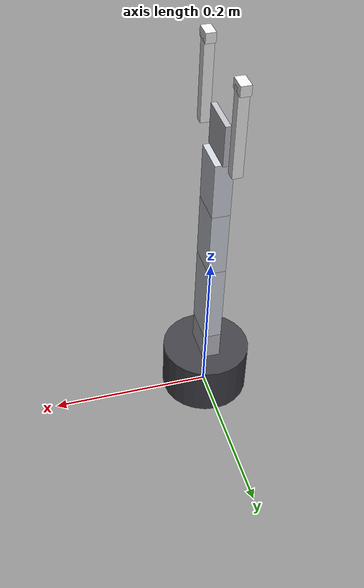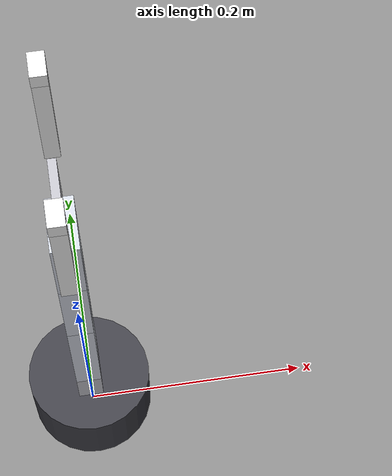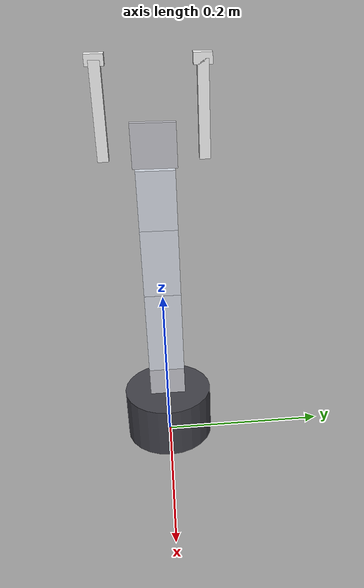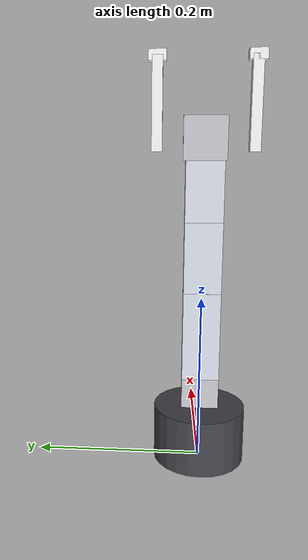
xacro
<?xml version="1.0"?>
<robot xmlns:xacro="http://www.ros.org/wiki/xacro" name="six_servo_arm">
    <xacro:arg name="initial_positions_file" default="initial_positions.yaml" />

    <!-- Import six_servo_arm urdf file -->
    <xacro:include filename="$(find six_servo_arm_description)/urdf/six_servo_arm_template.urdf" />

    <!-- Import control_xacro -->
    <xacro:include filename="six_servo_arm.ros2_control.xacro" />

    <xacro:six_servo_arm_ros2_control name="FakeSystem" initial_positions_file="$(arg initial_positions_file)"/>

</robot>

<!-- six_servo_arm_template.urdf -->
<robot name="six_servo_arm">

  <material name="dark_gray">
    <color rgba="0.25 0.25 0.28 1.0"/>
  </material>
  <material name="light_gray">
    <color rgba="0.75 0.75 0.78 1.0"/>
  </material>
  <material name="white">
    <color rgba="0.95 0.95 0.95 1.0"/>
  </material>
  <material name="silver">
    <color rgba="0.82 0.84 0.88 1.0"/>
  </material>

  <link name="base_link">
    <!--
      base_link = the fixed base of the whole robot.
      Think of it as the root body mounted on the table or chassis.
    -->
    <visual>
      <!-- visual only affects how it looks in RViz/Gazebo -->
      <!-- base_link frame is kept at the cylinder bottom center so the base sits on the ground plane -->
      <origin xyz="0 0 0.033" rpy="0 0 0"/>
      <geometry>
        <!-- diameter 11 cm, height 6.6 cm -->
        <cylinder radius="0.055" length="0.066"/>
      </geometry>
      <material name="dark_gray"/>
    </visual>
    <collision>
      <!-- collision affects collision checking; keep it simple -->
      <origin xyz="0 0 0.033" rpy="0 0 0"/>
      <geometry>
        <cylinder radius="0.055" length="0.066"/>
      </geometry>
    </collision>
    <inertial>
      <!-- inertial is used by physics simulators; rough placeholder values are fine at first -->
      <origin xyz="0 0 0.033" rpy="0 0 0"/>
      <mass value="1.0"/>
      <inertia ixx="0.002" ixy="0.0" ixz="0.0" iyy="0.002" iyz="0.0" izz="0.002"/>
    </inertial>
  </link>

  <link name="link_1">
    <!--
      link_1 = the rigid structure carried by servo 0 and ending at servo 1.
      In your arm, this is the first body after the rotating base.
    -->
    <visual>
      <!-- link1 is modeled as a rectangular block: length 4.4 cm, width 2.2 cm, height 3.6 cm -->
      <!-- its frame is placed at the bottom center, so the box center is half the height above the joint -->
      <origin xyz="0 0 0.018" rpy="0 0 0"/>
      <geometry>
        <box size="0.022 0.044 0.036"/>
      </geometry>
      <material name="light_gray"/>
    </visual>
    <collision>
      <origin xyz="0 0 0.018" rpy="0 0 0"/>
      <geometry>
        <box size="0.022 0.044 0.036"/>
      </geometry>
    </collision>
    <inertial>
      <origin xyz="0 0 0.018" rpy="0 0 0"/>
      <mass value="0.6"/>
      <inertia ixx="0.001" ixy="0.0" ixz="0.0" iyy="0.001" iyz="0.0" izz="0.001"/>
    </inertial>
  </link>

  <joint name="joint_0_base_yaw" type="revolute">
    <parent link="base_link"/>
    <child link="link_1"/>
    <!-- the top center of the 6.6 cm base cylinder coincides with the servo-0 axis -->
    <origin xyz="0 0 0.066" rpy="0 0 0"/>
    <axis xyz="0 0 1"/>
    <!-- angles are in radians; +/-2.35619 is about +/-135 degrees -->
    <limit lower="-2.35619" upper="2.35619" effort="5" velocity="2"/>
  </joint>

  <link name="link_2">
    <!--
      link_2 = the rigid section between servo 1 and servo 2.
      This is one of the "arm segments" you see in the middle.
    -->
    <visual>
      <origin xyz="0 0 0.053" rpy="0 0 0"/>
      <geometry>
        <box size="0.022 0.044 0.106"/>
      </geometry>
      <material name="silver"/>
    </visual>
    <collision>
      <origin xyz="0 0 0.062" rpy="0 0 0"/>
      <geometry>
        <box size="0.022 0.044 0.03"/>
      </geometry>
    </collision>
    <inertial>
      <origin xyz="0 0 0.053" rpy="0 0 0"/>
      <mass value="0.5"/>
      <inertia ixx="0.001" ixy="0.0" ixz="0.0" iyy="0.001" iyz="0.0" izz="0.001"/>
    </inertial>
  </link>

  <joint name="joint_1_shoulder_pitch" type="revolute">
    <parent link="link_1"/>
    <child link="link_2"/>
    <origin xyz="0 0 0.036" rpy="0 0 0"/>
    <axis xyz="0 -1 0"/>
    <limit lower="-2.35619" upper="2.35619" effort="5" velocity="2"/>
  </joint>

  <link name="link_3">
    <!-- link_3 = the rigid section between servo 2 and servo 3 -->
    <visual>
      <origin xyz="0 0 0.0417" rpy="0 0 0"/>
      <geometry>
        <box size="0.022 0.044 0.0833"/>
      </geometry>
      <material name="silver"/>
    </visual>
    <collision>
      <origin xyz="0 0 0.0417" rpy="0 0 0"/>
      <geometry>
        <box size="0.022 0.044 0.0833"/>
      </geometry>
    </collision>
    <inertial>
      <origin xyz="0 0 0.0417" rpy="0 0 0"/>
      <mass value="0.45"/>
      <inertia ixx="0.0008" ixy="0.0" ixz="0.0" iyy="0.0008" iyz="0.0" izz="0.0008"/>
    </inertial>
  </link>

  <joint name="joint_2_elbow_pitch" type="revolute">
    <!-- servo 2: elbow-like forward/backward motion -->
    <parent link="link_2"/>
    <child link="link_3"/>
    <origin xyz="0 0 0.106" rpy="0 0 0"/>
    <axis xyz="0 1 0"/>
    <limit lower="-2.35619" upper="2.35619" effort="5" velocity="2"/>
  </joint>

  <link name="link_4">
    <!--
      link_4 = the rigid end section between servo 3 and servo 4.
      You can think of this as the wrist mounting body.
    -->
    <visual>
      <origin xyz="0 0 0.035" rpy="0 0 0"/>
      <geometry>
        <box size="0.022 0.044 0.07"/>
      </geometry>
      <material name="silver"/>
    </visual>
    <collision>
      <origin xyz="0 0 0.0485" rpy="0 0 0"/>
      <geometry>
        <box size="0.041 0.02 0.043"/>
      </geometry>
    </collision>
    <inertial>
      <origin xyz="0 0 0.035" rpy="0 0 0"/>
      <mass value="0.35"/>
      <inertia ixx="0.0005" ixy="0.0" ixz="0.0" iyy="0.0005" iyz="0.0" izz="0.0005"/>
    </inertial>
  </link>

  <joint name="joint_3_wrist_pitch" type="revolute">
    <!-- servo 3: wrist-like forward/backward motion -->
    <parent link="link_3"/>
    <child link="link_4"/>
    <origin xyz="0 0 0.0833" rpy="0 0 0"/>
    <axis xyz="0 -1 0"/>
    <limit lower="-2.35619" upper="2.35619" effort="4" velocity="2"/>
  </joint>

  <link name="gripper_base">
    <!--
      gripper_base = the body mounted after servo 4.
      The whole gripper assembly rotates with joint_4.
    -->
    <visual>
      <origin xyz="0 0 0.025" rpy="0 0 0"/>
      <geometry>
        <box size="0.0065 0.05 0.05"/>
      </geometry>
      <material name="light_gray"/>
    </visual>
    <collision>
      <!-- simplified collision block so the wrist can rotate without frequent false positives -->
      <origin xyz="0 0 0.025" rpy="0 0 0"/>
      <geometry>
        <box size="0.041 0.043 0.02"/>
      </geometry>
    </collision>
    <inertial>
      <origin xyz="0.02 0 0.025" rpy="0 0 0"/>
      <mass value="0.25"/>
      <inertia ixx="0.0003" ixy="0.0" ixz="0.0" iyy="0.0003" iyz="0.0" izz="0.0003"/>
    </inertial>
  </link>

  <joint name="joint_4_wrist_yaw" type="revolute">
    <!--
      servo 4: rotates the gripper around its local vertical axis.
      This is the "wrist rotation" before the fingers.
    -->
    <parent link="link_4"/>
    <child link="gripper_base"/>
    <origin xyz="0 0 0.07" rpy="0 0 0"/>
    <axis xyz="0 0 1"/>
    <limit lower="-2.35619" upper="2.35619" effort="3" velocity="2"/>
  </joint>

  <link name="left_finger">
    <!--
      left_finger = one jaw of the gripper.
      We model it separately so MoveIt can understand the opening width and collisions better.
    -->
    <visual>
      <!-- finger geometry is local to the side hinge; fingertip length stays about 11 cm -->
      <origin xyz="0 0 0.052" rpy="0 0 0"/>
      <geometry>
        <box size="0.012 0.012 0.104"/>
      </geometry>
      <material name="white"/>
    </visual>
    <visual>
      <!-- fingertip pad -->
      <origin xyz="0 0 0.104" rpy="0 0 0"/>
      <geometry>
        <box size="0.012 0.02 0.012"/>
      </geometry>
      <material name="white"/>
    </visual>
    <collision>
      <!-- simplified rectangular collision keeps grasp checks predictable -->
      <origin xyz="0 0 0.052" rpy="0 0 0"/>
      <geometry>
        <box size="0.014 0.014 0.104"/>
      </geometry>
    </collision>
    <inertial>
      <origin xyz="0 0 0.052" rpy="0 0 0"/>
      <mass value="0.05"/>
      <inertia ixx="0.00005" ixy="0.0" ixz="0.0" iyy="0.00005" iyz="0.0" izz="0.00005"/>
    </inertial>
  </link>

  <joint name="joint_5_gripper" type="revolute">
    <parent link="gripper_base"/>
    <child link="left_finger"/>
    <origin xyz="0 0.055 0.01" rpy="0 0 0"/>
    <axis xyz="1 0 0"/>
    <limit lower="-0.6" upper="0.6" effort="2" velocity="2"/>
  </joint>

  <link name="right_finger">
    <!-- right_finger = the other jaw of the gripper -->
    <visual>
      <origin xyz="0 0 0.052" rpy="0 0 0"/>
      <geometry>
        <box size="0.012 0.012 0.104"/>
      </geometry>
      <material name="white"/>
    </visual>
    <visual>
      <origin xyz="0 0 0.104" rpy="0 0 0"/>
      <geometry>
        <box size="0.012 0.02 0.012"/>
      </geometry>
      <material name="white"/>
    </visual>
    <collision>
      <origin xyz="0 0 0.052" rpy="0 0 0"/>
      <geometry>
        <box size="0.014 0.014 0.104"/>
      </geometry>
    </collision>
    <inertial>
      <origin xyz="0 0 0.052" rpy="0 0 0"/>
      <mass value="0.05"/>
      <inertia ixx="0.00005" ixy="0.0" ixz="0.0" iyy="0.00005" iyz="0.0" izz="0.00005"/>
    </inertial>
  </link>

  <joint name="right_finger_joint" type="revolute">
    <parent link="gripper_base"/>
    <child link="right_finger"/>
    <origin xyz="0 -0.055 0.01" rpy="0 0 0"/>
    <axis xyz="1 0 0"/>
    <limit lower="-0.6" upper="0.0" effort="2" velocity="2"/>
    <mimic joint="joint_5_gripper" multiplier="-1.0" offset="0.0"/>
  </joint>

  <link name="tool0"/>

  <joint name="tool0_fixed" type="fixed">
    <parent link="gripper_base"/>
    <child link="tool0"/>
    <origin xyz="0 0 0.10" rpy="0 0 0"/>
  </joint>
</robot>
